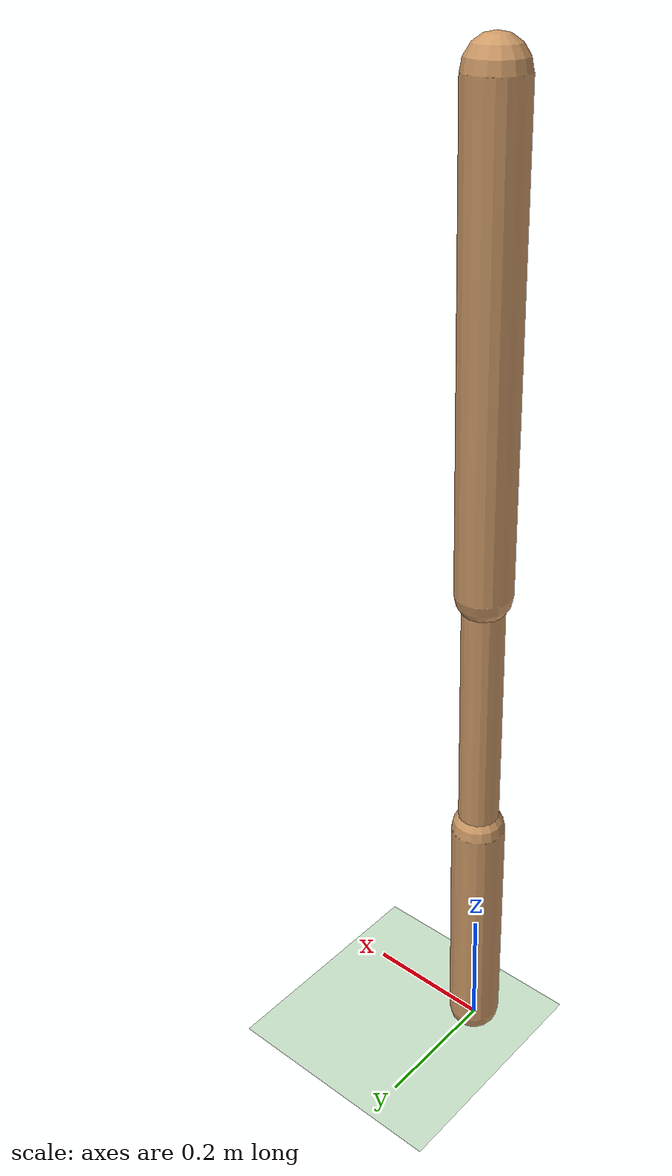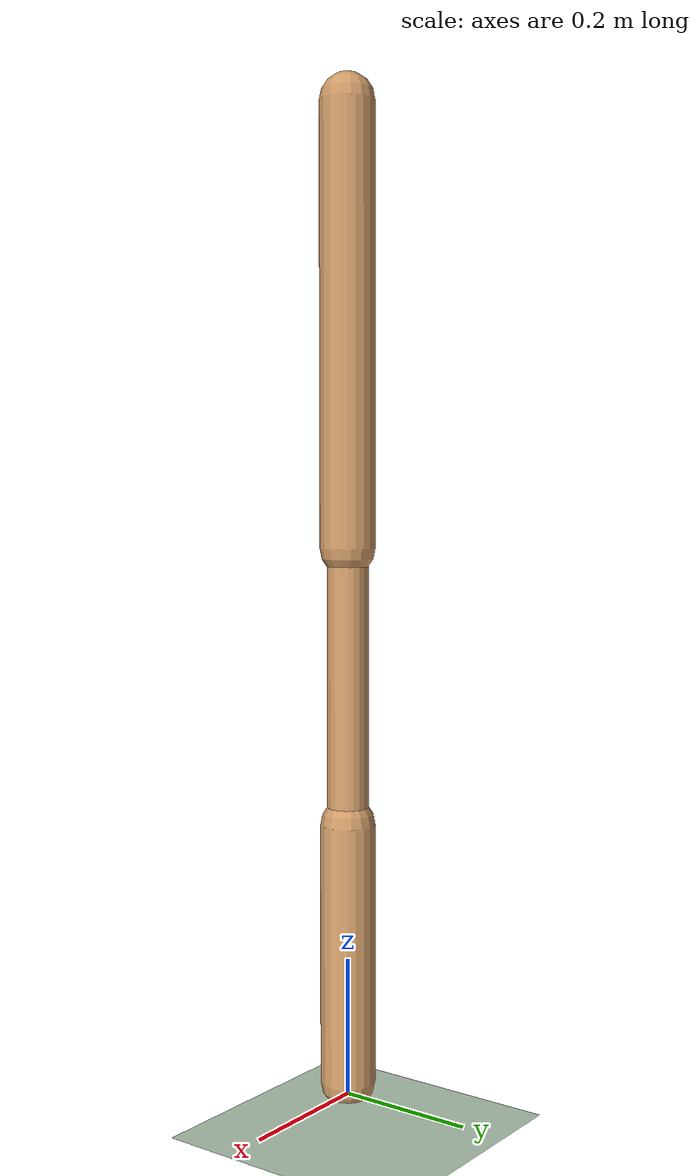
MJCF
<mujoco model="rabbit">
  <compiler angle="degree" coordinate="global" inertiafromgeom="auto"/>
  <default>
    <joint armature="0.01" damping=".1" limited="true"/>
    <geom conaffinity="0" condim="3" contype="1" density="1000" friction="1 1 1" rgba="0.8 0.6 .4 1"/>
  </default>
  <option integrator="RK4" timestep="0.002"/>
  <worldbody>
    <light cutoff="100" diffuse="1 1 1" dir="-0 0 -1.3" directional="true" exponent="1" pos="0 0 1.3" specular=".1 .1 .1"/>
    <geom friction="2" conaffinity="1" condim="3" name="floor" pos="0 0 0" rgba="0.8 0.9 0.8 1" size="40 40 40" type="plane" material="MatPlane"/>
    <body name="torso" pos="0 0 1.115">
      <camera name='track' pos='0 -6 1.5' xyaxes='3 0 0 5 0.1 1.5' mode='track'/>
      <inertial pos="0 0 1.115" quat="0.707107 0 0 0.707107" mass="12" diaginertia="1.33 1.33 0.1" />
      <!-- The three following joints are located in the hip of the robot and allow him to move in the sagital plane -->
      <joint armature="0" axis="1 0 0" damping="0" limited="false" name="rootx" pos="0 0 0" stiffness="0" type="slide"/>
      <joint armature="0" axis="0 0 1" damping="0" limited="false" name="rootz" pos="0 0 0" ref="0.8" stiffness="0" type="slide"/>
      <joint armature="0" axis="0 1 0" damping="0" limited="false" name="rooty" pos="0 0 1.25" stiffness="0" type="hinge"/>
      <geom friction="0.9" fromto="0 0 1.43 0 0 0.8" name="torso_geom" size="0.04" type="capsule"/>
      <body name="thigh" pos="0 0 0.6">
      	<inertial pos="0 0 0.6" mass="6.8" diaginertia="0.47 0.47 0.05" />
        <joint axis="0 1 0" name="thigh_joint" pos="0 0 0.8" ref="-180" range="90 250" type="hinge"/>
        <geom friction="0.9" fromto="0 0 0.8 0 0 0.4" name="thigh_geom" size="0.03" type="capsule"/>
        <body name="leg" pos="0 0 0.2">
          <inertial pos="0 0 0.24" mass="3.2" diaginertia="0.2 0.2 0.02" />
          <joint axis="0 1 0" name="leg_joint" pos="0 0 0.4" range="0 150" type="hinge"/>
          <geom friction="2" fromto="0 0 0.4 0 0 0.02" name="leg_geom" size="0.04" type="capsule"/>
          <site name='tsr' pos='0 0 .04' type='box' group='4' size='.04 .04 .06' rgba="0 100 0 100"/>
        </body>
      </body>
      <!-- copied and then replace thigh->thigh_left, leg->leg_left, foot->foot_right -->
      <body name="ca_left" pos="0 0 0.6">
      	<inertial pos="0 0 0.6" mass="6.8" diaginertia="0.47 0.47 0.05" />
        <joint axis="0 1 0" name="thigh_left_joint" pos="0 0 0.8" ref="-180" range="90 250" type="hinge"/>
        <geom friction="0.9" fromto="0 0 0.8 0 0 0.4" name="thigh_left_geom" rgba=".7 .3 .6 1" size="0.03" type="capsule"/>
        <body name="leg_left" pos="0 0 0.2">
          <inertial pos="0 0 0.24" mass="3.2" diaginertia="0.2 0.2 0.02" />
          <joint axis="0 1 0" name="leg_left_joint" pos="0 0 0.4" range="0 150" type="hinge"/>
          <geom friction="2" fromto="0 0 0.4 0 0 0.02" name="leg_left_geom" rgba=".7 .3 .6 1" size="0.04" type="capsule"/>
          <site name='tsl' pos='0 0 .04' type='box' group='4' size='.04 .04 .06' rgba="0 100 0 100"/>
        </body>
      </body>
    </body>
  </worldbody>
  <actuator>
    <motor ctrllimited="true" ctrlrange="-4.0 4.0" gear="10" joint="thigh_joint"/>
    <motor ctrllimited="true" ctrlrange="-4.0 4.0" gear="10" joint="leg_joint"/>
    <motor ctrllimited="true" ctrlrange="-4.0 4.0" gear="10" joint="thigh_left_joint"/>
    <motor ctrllimited="true" ctrlrange="-4.0 4.0" gear="10" joint="leg_left_joint"/>
  </actuator>
    <asset>
        <texture type="skybox" builtin="gradient" rgb1=".4 .5 .6" rgb2="0 0 0"
            width="100" height="100"/>
        <texture builtin="flat" height="1278" mark="cross" markrgb="1 1 1" name="texgeom" random="0.01" rgb1="0.8 0.6 0.4" rgb2="0.8 0.6 0.4" type="cube" width="127"/>
        <texture builtin="checker" height="100" name="texplane" rgb1="0 0 0" rgb2="0.8 0.8 0.8" type="2d" width="100"/>
        <material name="MatPlane" reflectance="0.5" shininess="1" specular="1" texrepeat="60 60" texture="texplane"/>
        <material name="geom" texture="texgeom" texuniform="true"/>
    </asset>

  <sensor>
    <touch name="ts_r"  site="tsr"/>
    <touch name="ts_l"  site="tsl"/>
  </sensor>

</mujoco>
